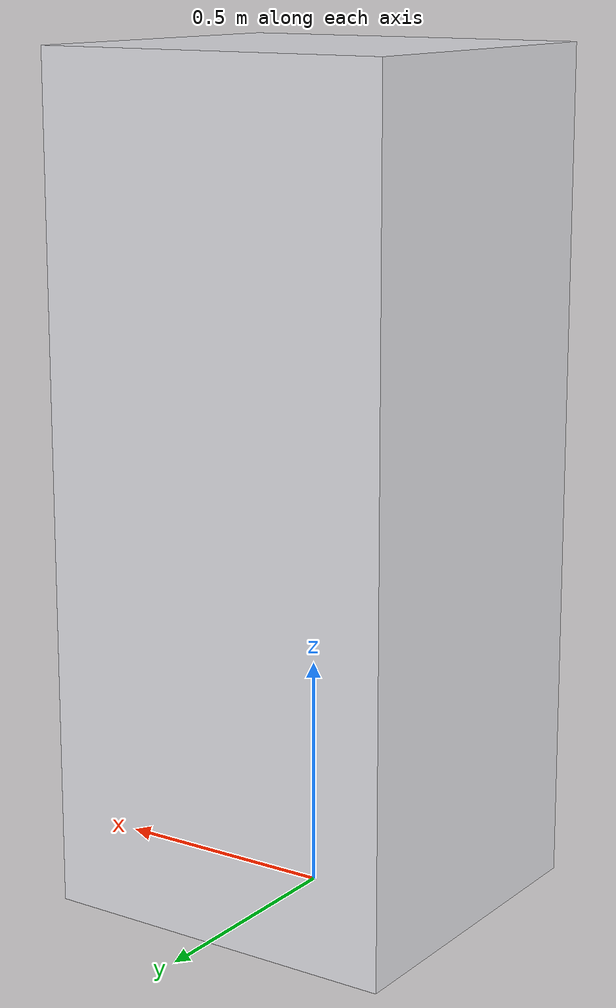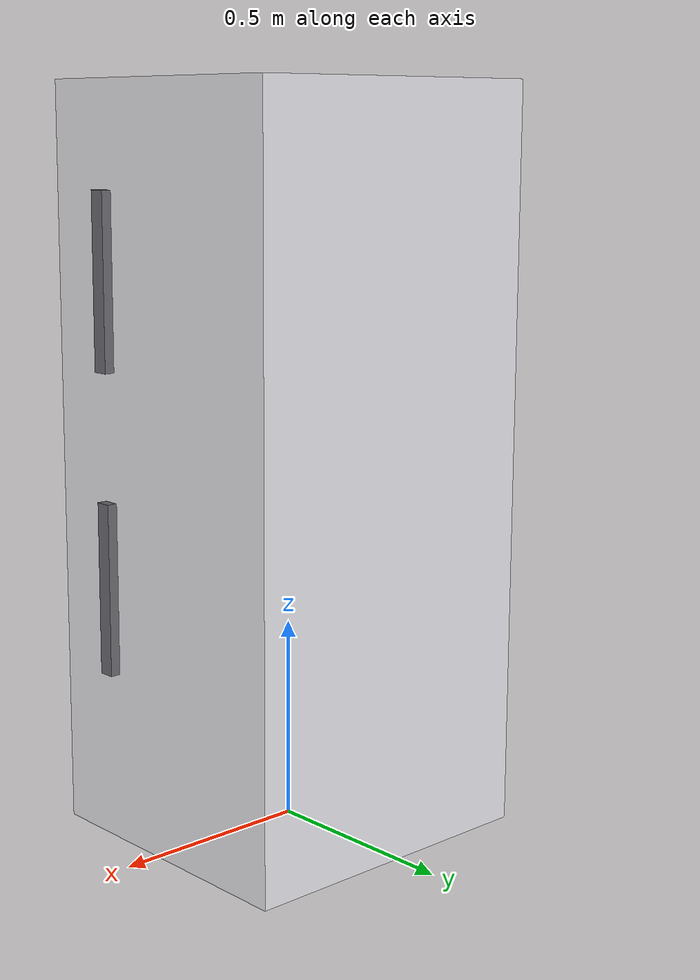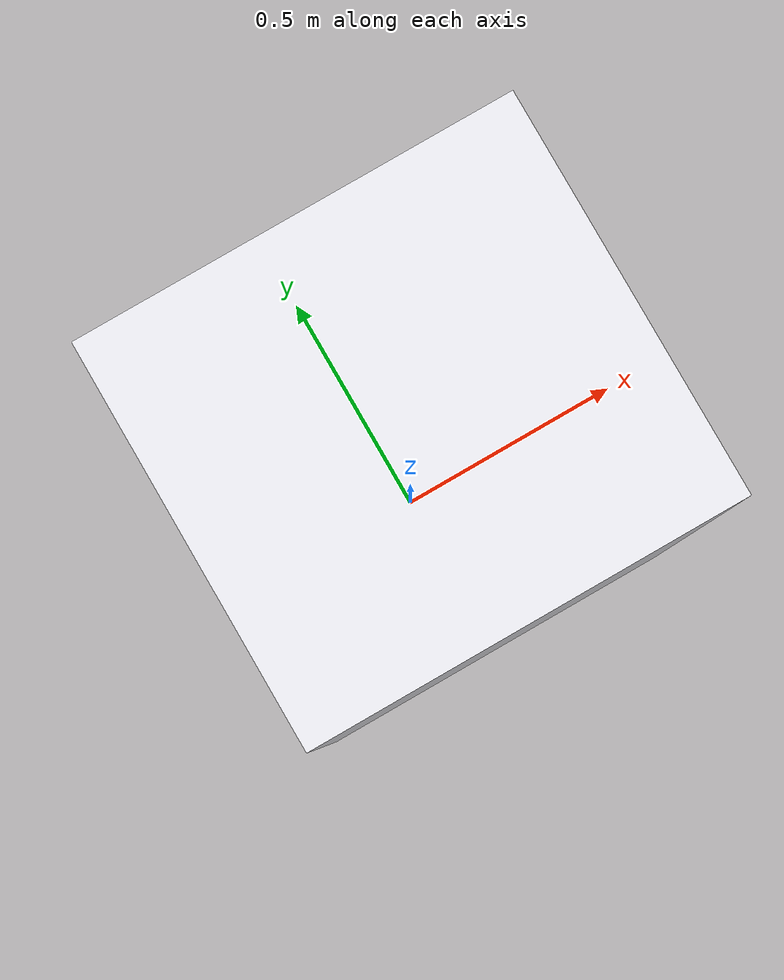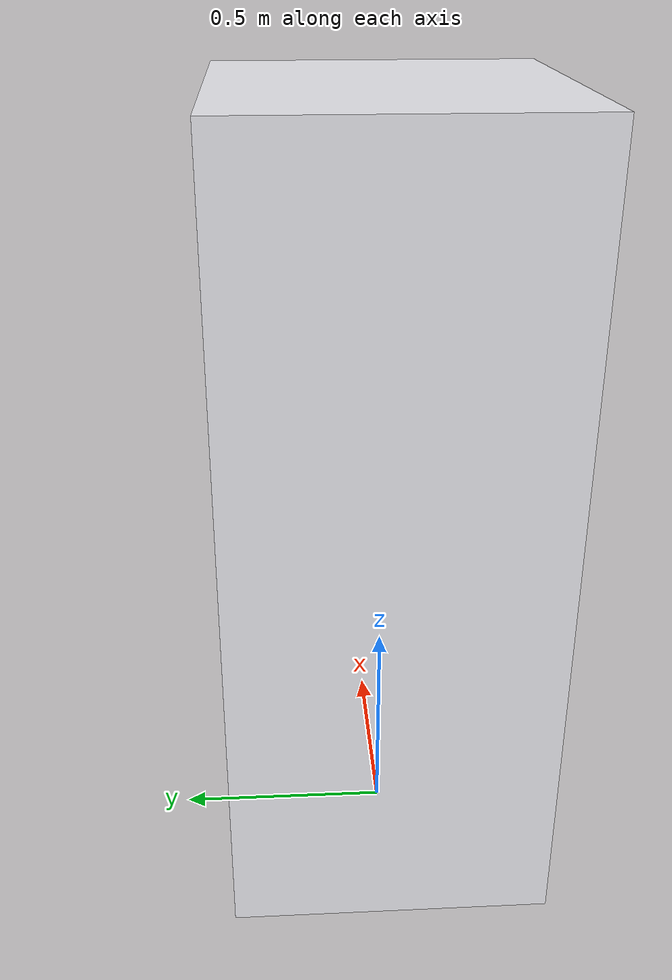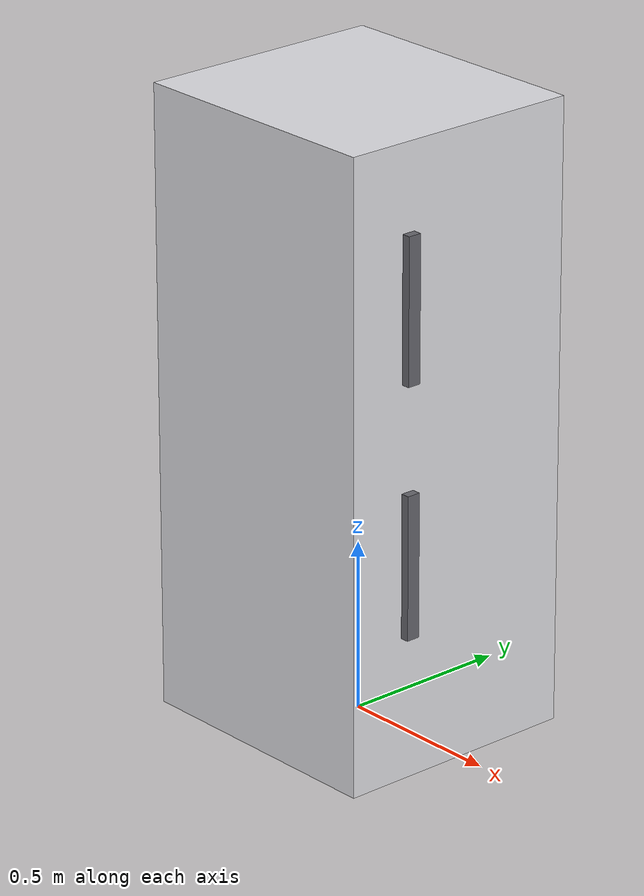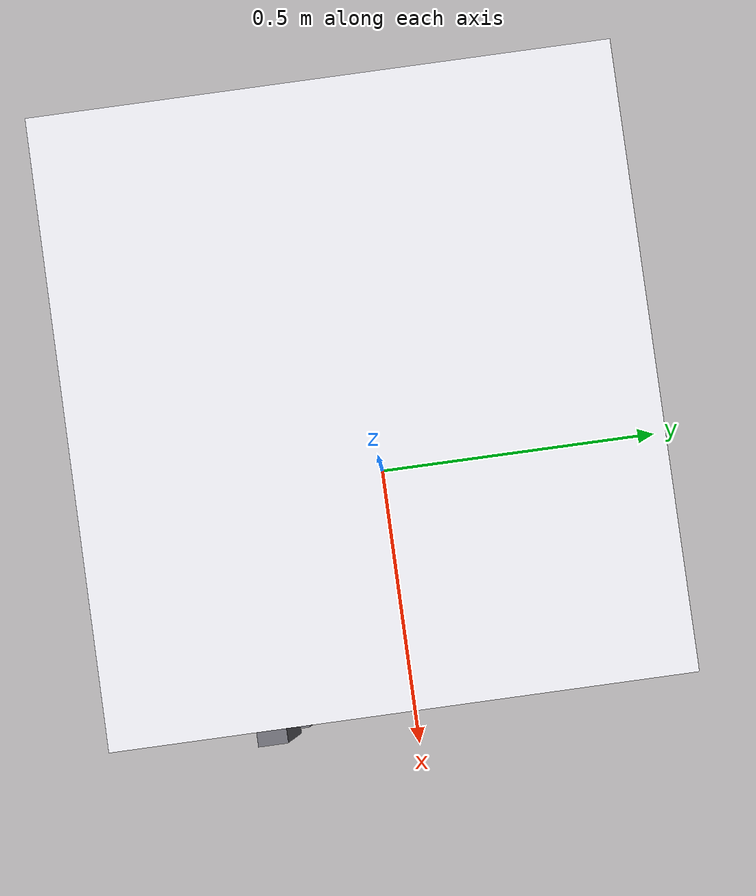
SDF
<?xml version="1.0"?>
<sdf version="1.9">
  <model name="fridge">
    <static>true</static>
    <link name="body">

      <collision name="main_collision">
        <pose>0 0 0.90 0 0 0</pose>
        <geometry><box><size>0.80 0.74 1.82</size></box></geometry>
      </collision>
      <collision name="top_door_handle_collision">
        <pose>0.41 -0.18 1.35 0 0 0</pose>
        <geometry><box><size>0.03 0.04 0.42</size></box></geometry>
      </collision>
      <collision name="bottom_door_handle_collision">
        <pose>0.41 -0.18 0.62 0 0 0</pose>
        <geometry><box><size>0.03 0.04 0.42</size></box></geometry>
      </collision>

      <visual name="main_visual">
        <pose>0 0 0.90 0 0 0</pose>
        <geometry><box><size>0.80 0.74 1.82</size></box></geometry>
        <material>
          <ambient>0.72 0.72 0.74 1</ambient>
          <diffuse>0.88 0.88 0.90 1</diffuse>
          <specular>0.18 0.18 0.18 1</specular>
        </material>
      </visual>

      <visual name="door_split">
        <pose>0.39 0 1.08 0 0 0</pose>
        <geometry><box><size>0.01 0.70 1.45</size></box></geometry>
        <material><ambient>0.55 0.55 0.56 1</ambient><diffuse>0.68 0.68 0.70 1</diffuse></material>
      </visual>

      <visual name="top_door_handle">
        <pose>0.41 -0.18 1.35 0 0 0</pose>
        <geometry><box><size>0.03 0.04 0.42</size></box></geometry>
        <material><ambient>0.25 0.25 0.27 1</ambient><diffuse>0.40 0.40 0.43 1</diffuse></material>
      </visual>
      <visual name="bottom_door_handle">
        <pose>0.41 -0.18 0.62 0 0 0</pose>
        <geometry><box><size>0.03 0.04 0.42</size></box></geometry>
        <material><ambient>0.25 0.25 0.27 1</ambient><diffuse>0.40 0.40 0.43 1</diffuse></material>
      </visual>

    </link>
  </model>
</sdf>
